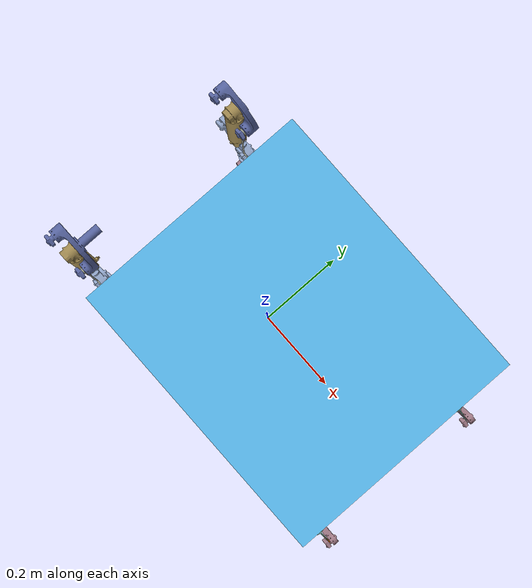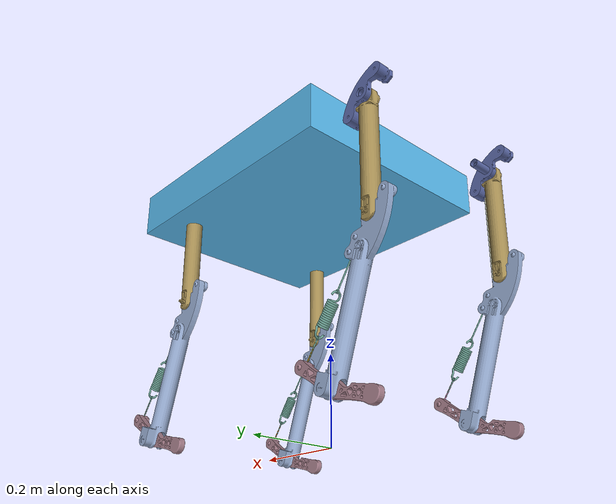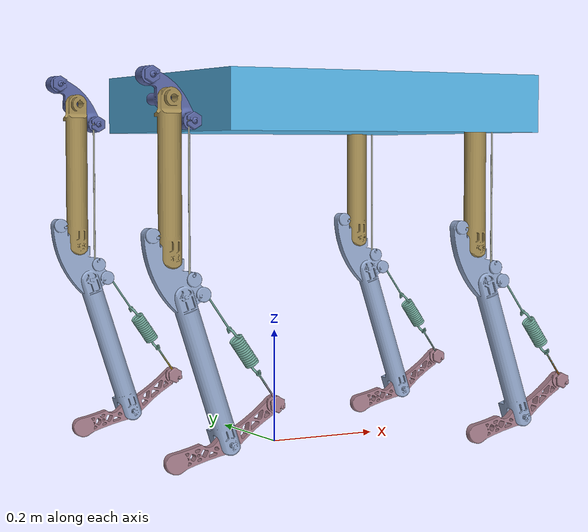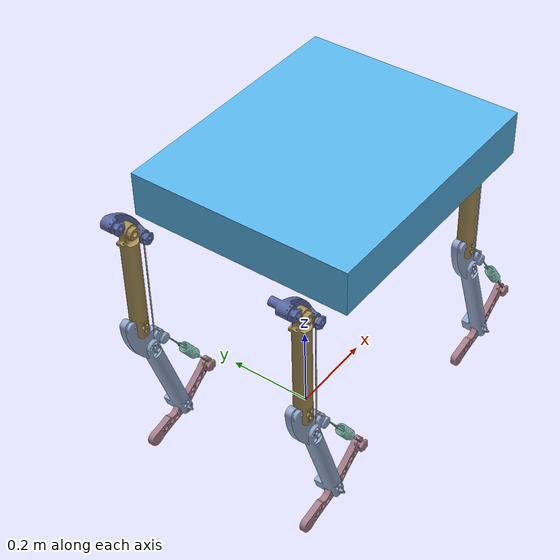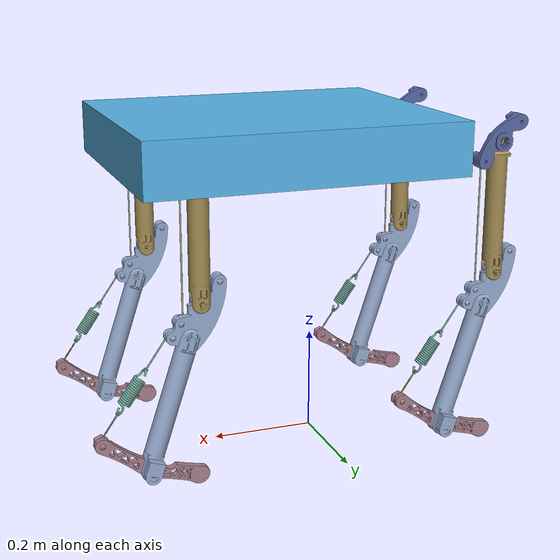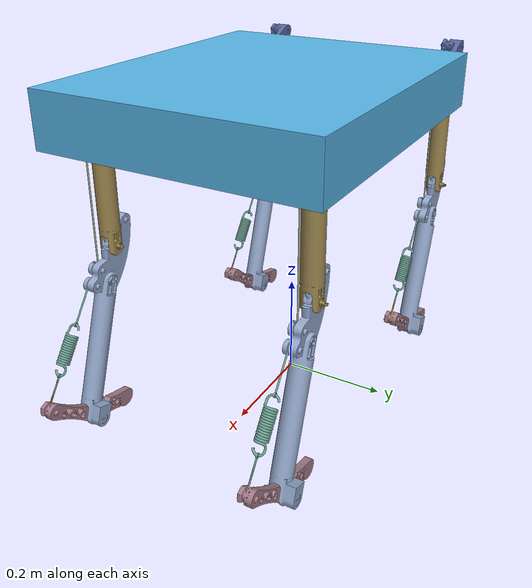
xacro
<?xml version="1.0" ?>
<!-- |    This document was autogenerated by xacro from laelaps_robot.urdf.xacro        | -->
<!-- |    EDITING THIS FILE BY HAND IS NOT RECOMMENDED                                 | -->
<!--
This file includes the main robot description of the new developed by CSL at NTUA Athens
-->
<robot name="laelaps_robot"
    xmlns:xacro="http://www.ros.org/wiki/xacro">
    <xacro:include filename="$(find laelaps_description)/urdf/laelaps_robot.urdf.xacro" />
    <xacro:laelaps_robot/>
</robot>

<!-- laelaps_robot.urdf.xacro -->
<!--
This file includes the main robot description of the new developed laelaps robot by CSL NTUA Athens
-->
<robot name="laelaps"
    xmlns:xacro="http://www.ros.org/wiki/xacro">
    <!-- Constants for robot dimensions -->
    <xacro:property name="initial_height" value="0.5" />
    <xacro:property name="body_stl" value="package://laelaps_description/meshes/body.STL"/>
    <xacro:property name="body_dae" value="package://laelaps_description/meshes/body_grey_m.dae"/>
    <!-- base dimensions -->
    <xacro:property name="base_mass" value="40"/>
    <xacro:property name="base_length" value="0.6"/>
    <xacro:property name="base_width" value="0.4"/>
    <xacro:property name="base_depth" value="0.1"/>
    <xacro:property name="hip_to_hip" value="${base_length}"/>
    <xacro:property name="com_pos" value="-0.01"/>
    <xacro:property name="com_pos_visual" value="-0.01"/>
    <xacro:property name="base_IXX" value="0.87"/>
    <xacro:property name="base_IXY" value="0.0"/>
    <xacro:property name="base_IXZ" value="0.0"/>
    <xacro:property name="base_IYY" value="1.23"/>
    <xacro:property name="base_IYZ" value="0.0"/>
    <xacro:property name="base_IZZ" value="2.03"/>
    <xacro:property name="distance_from_ground" value="0.6" />
    <xacro:include filename="$(find laelaps_description)/urdf/leg.urdf.xacro" />
    <xacro:macro name="laelaps_robot">

        <link name="initial_link"/>
        <joint name="floating_base" type="fixed">
            <parent link="initial_link"/>
            <child link="body"/>
        </joint>

        <!-- base -->
        <link name="body">
            <collision>
                <origin xyz="${com_pos} 0 ${distance_from_ground}" rpy="0 0 0"/>
                <geometry>
                    <mesh filename="${body_stl}"/>
                </geometry>
            </collision>
            <visual>
                <origin xyz="${com_pos_visual} 0 ${distance_from_ground}" rpy="1.57 0 0"/>
                <geometry>
                    <mesh filename="${body_dae}"/>
                </geometry>
            </visual>
            <inertial>
                <origin xyz="${com_pos} 0 ${distance_from_ground}" rpy="0 0 0"/>
                <mass value="${base_mass}"/>
                <inertia ixx="${base_IXX}" ixy="${base_IXY}" ixz="${base_IXZ}" iyy="${base_IYY}" iyz="${base_IYZ}" izz="${base_IZZ}" />
            </inertial>
        </link>

        <!-- include all four legs -->
        <!-- Right Side -->
        <xacro:leg distance_from_ground="${distance_from_ground}" prefix1="R" prefix2="F"/>
        <xacro:leg distance_from_ground="${distance_from_ground}" prefix1="R" prefix2="H"/>
        <!-- Left Side -->
        <xacro:leg distance_from_ground="${distance_from_ground}" prefix1="L" prefix2="F"/>
        <xacro:leg distance_from_ground="${distance_from_ground}" prefix1="L" prefix2="H"/>

    </xacro:macro>

    <gazebo>
        <plugin name="gazebo_ros_control" filename="libgazebo_ros_control.so">
            <robotNamespace>/laelaps_robot</robotNamespace>
        </plugin>
    </gazebo>

</robot>

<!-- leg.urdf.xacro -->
<!-- This xacro file describes the robotic legs of the laelaps_robot -->
<robot name="laelaps_robot"
    xmlns:xacro="http://www.ros.org/wiki/xacro">
    <xacro:property name="femur_length" value="0.25"/>
    <xacro:property name="tibia_length" value="0.3"/>
    <xacro:property name="arm_mass" value="0.16"/>
    <!-- Joint A -->
    <xacro:property name= "joint_A_lower_limit" value="-1.25"/>
    <xacro:property name= "joint_A_upper_limit" value="1.25"/>
    <!-- Joint B -->
    <xacro:property name= "joint_B_lower_limit" value="-1.25"/>
    <xacro:property name= "joint_B_upper_limit" value="1.25"/>
    <!-- Joint C -->
    <xacro:property name="joint_C_lower_limit" value="0.0"/>
    <xacro:property name="joint_C_upper_limit" value="1.57"/>
    <!-- Joint D -->
    <xacro:property name= "joint_D_lower_limit" value="-1.25"/>
    <xacro:property name= "joint_D_upper_limit" value="1.25"/>
    <!-- Joint G -->
    <xacro:property name="joint_G_lower_limit" value="-0.05"/>
    <xacro:property name="joint_G_upper_limit" value="0"/>
    <!-- xacro macro for building each leg -->
    <!-- Leg position -->
    <xacro:property name="leg_X" value="0"/>
    <xacro:property name="leg_Y1" value="0"/>
    <xacro:property name="leg_Y2" value="0"/>
    <xacro:property name="leg_Z" value="0"/>
    <!-- Files -->
    <xacro:property name="arm_stl" value="package://laelaps_description/meshes/transmission_arm.STL"/>
    <xacro:property name="arm_dae_left" value="package://laelaps_description/meshes/transmission_arm.dae"/>
    <xacro:property name="arm_dae_right" value="package://laelaps_description/meshes/transmission_arm_right.dae"/>
    <xacro:property name="femur_stl" value="package://laelaps_description/meshes/femur.STL"/>
    <xacro:property name="femur_dae" value="package://laelaps_description/meshes/femur.dae"/>
    <xacro:property name="tibia_stl" value="package://laelaps_description/meshes/tibia.STL"/>
    <xacro:property name="tibia_dae" value="package://laelaps_description/meshes/tibia.dae"/>
    <xacro:property name="foot_stl" value="package://laelaps_description/meshes/foot.STL"/>
    <xacro:property name="foot_dae" value="package://laelaps_description/meshes/foot.dae"/>
    <xacro:property name="cable_stl" value="package://laelaps_description/meshes/cable.STL"/>
    <xacro:property name="cable_dae" value="package://laelaps_description/meshes/cable.dae"/>
    <xacro:property name="spring_part_a_stl" value="package://laelaps_description/meshes/spring_part_a.STL"/>
    <xacro:property name="spring_part_a_dae" value="package://laelaps_description/meshes/spring_part_a.dae"/>
    <xacro:property name="spring_part_b_stl" value="package://laelaps_description/meshes/spring_part_b.STL"/>
    <xacro:property name="spring_part_b_dae" value="package://laelaps_description/meshes/spring_part_b.dae"/>
    <!-- xacro macro for building each leg -->
    <!-- Leg properties Start -->
    <xacro:property name="arm_mass" value="0.243583"/>
    <xacro:property name="arm_IXX" value="0.000238"/>
    <xacro:property name="arm_IXY" value="-0.000143"/>
    <xacro:property name="arm_IXZ" value="0"/>
    <xacro:property name="arm_IYY" value="0.000238"/>
    <xacro:property name="arm_IYZ" value="0"/>
    <xacro:property name="arm_IZZ" value="0.000326"/>
    <xacro:property name="arm_inertia_origin" value="0.001841 0.001845 0.000604"/>
    <xacro:property name="arm_inertia_rotation" value="0.0 0.0 0"/>
    <xacro:property name="femur_mass" value="0.321675"/>
    <xacro:property name="femur_IXX" value="0.0030216"/>
    <xacro:property name="femur_IXY" value="0.0"/>
    <xacro:property name="femur_IXZ" value="0.0"/>
    <xacro:property name="femur_IYY" value="0.0000606"/>
    <xacro:property name="femur_IYZ" value="0.0000508"/>
    <xacro:property name="femur_IZZ" value="0.0030174"/>
    <xacro:property name="femur_inertia_origin" value="0 -0.1089928 0.0013804"/>
    <xacro:property name="tibia_mass" value="0.583068"/>
    <xacro:property name="tibia_IXX" value="0.0069971"/>
    <xacro:property name="tibia_IXY" value="-0.0025079"/>
    <xacro:property name="tibia_IXZ" value="-0.0000413"/>
    <xacro:property name="tibia_IYY" value="0.0011300"/>
    <xacro:property name="tibia_IYZ" value="0.0001357"/>
    <xacro:property name="tibia_IZZ" value="0.0080248"/>
    <xacro:property name="tibia_inertia_origin" value="0.0343235 -0.1131727 -0.0003377"/>
    <xacro:property name="tibia_inertia_rotation" value="0.0 0.0 0"/>
    <xacro:property name="foot_mass" value="0.185259"/>
    <xacro:property name="foot_IXX" value="0.000039"/>
    <xacro:property name="foot_IXY" value="0.000114"/>
    <xacro:property name="foot_IXZ" value="0.000014"/>
    <xacro:property name="foot_IYY" value="0.000946"/>
    <xacro:property name="foot_IYZ" value="0.000003"/>
    <xacro:property name="foot_IZZ" value="0.000974"/>
    <xacro:property name="foot_inertia_origin" value="0 0 0"/>
    <xacro:property name="footStiffness" value="300000.0"/>
    <xacro:property name="footDamping" value="1000.0"/>
    <xacro:property name="footSpinningFriction" value="1.0"/>
    <xacro:property name="footLateralFriction" value="1.2"/>
    <xacro:property name="cable_mass" value="0.1"/>
    <xacro:property name="cable_IXX" value="0.00008"/>
    <xacro:property name="cable_IXY" value="0"/>
    <xacro:property name="cable_IXZ" value="0"/>
    <xacro:property name="cable_IYY" value="0.000002"/>
    <xacro:property name="cable_IYZ" value="0.0000"/>
    <xacro:property name="cable_IZZ" value="0.00008"/>
    <xacro:property name="cable_inertia_origin" value="0 -0.125 0"/>
    <xacro:property name="springA_mass" value="0.05"/>
    <xacro:property name="springA_IXX" value="0.000012"/>
    <xacro:property name="springA_IXY" value="0"/>
    <xacro:property name="springA_IXZ" value="0"/>
    <xacro:property name="springA_IYY" value="0.0000606"/>
    <xacro:property name="springA_IYZ" value="0.0000508"/>
    <xacro:property name="springA_IZZ" value="0.0030174"/>
    <xacro:property name="springA_inertia_origin" value="0 0 0"/>
    <xacro:property name="springB_mass" value="0.05"/>
    <xacro:property name="springB_IXX" value="0.000012"/>
    <xacro:property name="springB_IXY" value="0"/>
    <xacro:property name="springB_IXZ" value="0"/>
    <xacro:property name="springB_IYY" value="0.000001"/>
    <xacro:property name="springB_IYZ" value="0"/>
    <xacro:property name="springB_IZZ" value="0.000012"/>
    <xacro:property name="springB_inertia_origin" value="0 0 0"/>
    <xacro:property name="Kspring" value="26480"/>
    <xacro:property name="Bspring" value="0.1"/>
    <xacro:property name="hip_to_hip" value="0.6"/>
    <xacro:property name="leg_X_pos" value="0.28"/>
    <xacro:property name="leg_X_pos_minus" value="-0.3"/>
    <xacro:property name="leg_Y1_pos" value="0.2"/>
    <xacro:property name="leg_Y1_pos_minus" value="-0.2"/>
    <xacro:property name="leg_Y2_pos_minus" value="-0.216"/>
    <xacro:property name="leg_Y2_pos_plus" value="0.184"/>
    <xacro:property name="leg_Z_pos" value="0.0"/>
    <xacro:property name="hip_effort" value="50"/>
    <xacro:property name="knee_effort" value="50"/>
    <xacro:property name="hip_velocity" value="6"/>
    <xacro:property name="knee_velocity" value="8"/>
    <!-- Leg properties End -->
    <xacro:macro name="leg" params="distance_from_ground prefix1 prefix2">
        <!-- Set up the the lever position angle and the actuator position for each leg individually -->
        <xacro:if value="${prefix1 == 'L' and prefix2 == 'H'}">
            <xacro:property name="leg_X" value="${leg_X_pos}"/>
            <xacro:property name="leg_Y1" value="${leg_Y1_pos_minus}"/>
            <xacro:property name="leg_Y2" value="${leg_Y2_pos_minus}"/>
            <xacro:property name="leg_Z" value="${leg_Z_pos}"/>
            <xacro:property name="arm_dae" value="${arm_dae_left}"/>
        </xacro:if>
        <xacro:if value="${prefix1 == 'R' and prefix2 == 'H'}">
            <xacro:property name="leg_X" value="${leg_X_pos}"/>
            <xacro:property name="leg_Y1" value="${leg_Y1_pos}"/>
            <xacro:property name="leg_Y2" value="${leg_Y2_pos_plus}"/>
            <xacro:property name="leg_Z" value="${leg_Z_pos}"/>
            <xacro:property name="arm_dae" value="${arm_dae_right}"/>
        </xacro:if>
        <xacro:if value="${prefix1 == 'L' and prefix2 == 'F'}">
            <xacro:property name="leg_X" value="${leg_X_pos_minus}"/>
            <xacro:property name="leg_Y1" value="${leg_Y1_pos_minus}"/>
            <xacro:property name="leg_Y2" value="${leg_Y2_pos_minus}"/>
            <xacro:property name="leg_Z" value="${leg_Z_pos}"/>
            <xacro:property name="arm_dae" value="${arm_dae_left}"/>
        </xacro:if>
        <xacro:if value="${prefix1 == 'R' and prefix2 == 'F'}">
            <xacro:property name="leg_X" value="${leg_X_pos_minus}"/>
            <xacro:property name="leg_Y1" value="${leg_Y1_pos}"/>
            <xacro:property name="leg_Y2" value="${leg_Y2_pos_plus}"/>
            <xacro:property name="leg_Z" value="${leg_Z_pos}"/>
            <xacro:property name="arm_dae" value="${arm_dae_right}"/>
        </xacro:if>
        <!-- arm -->
        <!-- arm -->
        <!-- arm -->
        <link name="${prefix1}${prefix2}_arm">
            <collision>
                <origin xyz="0 0 0" rpy="0 0 0"/>
                <geometry>
                    <mesh filename="${arm_stl}"/>
                </geometry>
            </collision>
            <visual>
                <origin xyz="0 0 0" rpy="0 0 0"/>
                <geometry>
                    <mesh filename="${arm_dae}"/>
                </geometry>
            </visual>
            <inertial>
                <origin xyz="${arm_inertia_origin}" rpy="${arm_inertia_rotation}"/>
                <mass value="${arm_mass}"/>
                <inertia ixx="${arm_IXX}" ixy="${arm_IXY}" ixz="${arm_IXZ}" iyy="${arm_IYY}" iyz="${arm_IXZ}" izz="${arm_IZZ}"/>
            </inertial>
        </link>
        <!-- upper leg -->
        <!-- upper leg -->
        <!-- upper leg -->
        <link name="${prefix1}${prefix2}_femur">
            <collision>
                <origin xyz="0 0 0" rpy="0 0 0"/>
                <geometry>
                    <mesh filename="${femur_stl}"/>
                </geometry>
            </collision>
            <visual>
                <origin xyz="0 0 0" rpy="0 0 0"/>
                <geometry>
                    <mesh filename="${femur_dae}"/>
                </geometry>
            </visual>
            <inertial>
                <origin xyz="${femur_inertia_origin}" rpy="0 0 0"/>
                <mass value="${femur_mass}"/>
                <inertia ixx="${femur_IXX}" ixy="${femur_IXY}" ixz="${femur_IXZ}" iyy="${femur_IYY}" iyz="${femur_IYZ}" izz="${femur_IZZ}"/>
            </inertial>
        </link>
        <!-- lower leg -->
        <!-- lower leg -->
        <!-- lower leg -->
        <link name="${prefix1}${prefix2}_tibia">
            <collision>
                <origin xyz="0 0 0" rpy="0 0 0"/>
                <geometry>
                    <mesh filename="${tibia_stl}"/>
                </geometry>
            </collision>
            <visual>
                <origin xyz="0 0 0" rpy="0 0 0"/>
                <geometry>
                    <mesh filename="${tibia_dae}"/>
                </geometry>
            </visual>
            <inertial>
                <origin xyz="${tibia_inertia_origin}" rpy="${tibia_inertia_rotation}"/>
                <mass value="${tibia_mass}"/>
                <inertia ixx="${tibia_IXX}" ixy="${tibia_IXY}" ixz="${tibia_IXZ}" iyy="${tibia_IYY}" iyz="${tibia_IYZ}" izz="${tibia_IZZ}"/>
            </inertial>
        </link>
        <!-- foot -->
        <!-- foot -->
        <!-- foot -->
        <link name="${prefix1}${prefix2}_foot">
            <collision>
                <origin xyz="0 0 0" rpy="0 0 0"/>
                <geometry>
                    <mesh filename="${foot_stl}"/>
                </geometry>
            </collision>
            <visual>
                <origin xyz="0 0 0" rpy="0 0 0"/>
                <geometry>
                    <mesh filename="${foot_dae}"/>
                </geometry>
            </visual>
            <inertial>
                <origin xyz="${foot_inertia_origin}" rpy="0 0 0"/>
                <mass value="${foot_mass}"/>
                <inertia ixx="${foot_IXX}" ixy="${foot_IXY}" ixz="${foot_IXZ}" iyy="${foot_IYY}" iyz="${foot_IYZ}" izz="${foot_IZZ}"/>
            </inertial>
        </link>
        <!-- foot -->
        <!-- foot -->
        <!-- foot -->
        <gazebo reference="${prefix1}${prefix2}_foot">
            <collision>
                <surface>
                    <bounce>
                        <restitution_coefficient>0</restitution_coefficient>
                        <threshold>1e+06</threshold>
                    </bounce>
                    <friction>
                        <torsional>
                            <coefficient>${footSpinningFriction}</coefficient>
                        </torsional>
                        <ode>
                            <mu>${footLateralFriction}</mu>
                            <mu2>${footLateralFriction}</mu2>
                        </ode>
                        <bullet>
                            <rolling_friction>${footSpinningFriction}</rolling_friction>
                            <friction2>${footLateralFriction}</friction2>
                        </bullet>
                    </friction>
                    <contact>
                        <ode>
                            <kp>${footStiffness}</kp>
                            <kd>${footDamping}</kd>
                        </ode>
                        <bullet>
                            <kp>${footStiffness}</kp>
                            <kd>${footDamping}</kd>
                        </bullet>
                    </contact>
                </surface>
            </collision>
        </gazebo>
        <!-- cable -->
        <!-- cable -->
        <!-- cable -->
        <link name="${prefix1}${prefix2}_cable">
            <collision>
                <origin xyz="0 0 0" rpy="0 0 0"/>
                <geometry>
                    <mesh filename="${cable_stl}"/>
                </geometry>
            </collision>
            <visual>
                <origin xyz="0 0 0" rpy="0 0 0"/>
                <geometry>
                    <mesh filename="${cable_dae}"/>
                </geometry>
            </visual>
            <inertial>
                <origin xyz="${cable_inertia_origin}" rpy="0 0 0"/>
                <mass value="${cable_mass}"/>
                <inertia ixx="${cable_IXX}" ixy="${cable_IXY}" ixz="${cable_IXZ}" iyy="${cable_IYY}" iyz="${cable_IYZ}" izz="${cable_IZZ}"/>
            </inertial>
        </link>
        <!-- spring_part_a -->
        <!-- spring_part_a -->
        <!-- spring_part_a -->
        <link name="${prefix1}${prefix2}_spring_part_a">
            <collision>
                <origin xyz="0 0 0" rpy="0 0 0"/>
                <geometry>
                    <mesh filename="${spring_part_a_stl}"/>
                </geometry>
            </collision>
            <visual>
                <origin xyz="0 0 0" rpy="0 0 0"/>
                <geometry>
                    <mesh filename="${spring_part_a_dae}"/>
                </geometry>
            </visual>
            <inertial>
                <origin xyz="${springA_inertia_origin}" rpy="0 0 0"/>
                <mass value="${springA_mass}"/>
                <inertia ixx="${springA_IXX}" ixy="${springA_IXY}" ixz="${springA_IXZ}" iyy="${springA_IYY}" iyz="${springA_IYZ}" izz="${springA_IZZ}"/>
            </inertial>
        </link>
        <!-- spring_part_b -->
        <!-- spring_part_b -->
        <!-- spring_part_b -->
        <link name="${prefix1}${prefix2}_spring_part_b">
            <collision>
                <origin xyz="0 -0.03 0" rpy="0 0 0"/>
                <geometry>
                    <mesh filename="${spring_part_b_stl}"/>
                </geometry>
            </collision>
            <visual>
                <origin xyz="0 -0.03 0" rpy="0 0 0"/>
                <geometry>
                    <mesh filename="${spring_part_b_stl}"/>
                </geometry>
            </visual>
            <inertial>
                <origin xyz="${springB_inertia_origin}" rpy="0 0 0"/>
                <mass value="${springB_mass}"/>
                <inertia ixx="${springB_IXX}" ixy="${springB_IXY}" ixz="${springB_IXZ}" iyy="${springB_IYY}" iyz="${springB_IYZ}" izz="${springB_IZZ}"/>
            </inertial>
        </link>
        <!-- joint A -->
        <!-- joint A -->
        <!-- joint A -->
        <joint name="${prefix1}${prefix2}_joint_knee" type="revolute">
            <origin xyz="${leg_X} ${leg_Y1} ${distance_from_ground}" rpy="1.57 0 0"/>
            <parent link="body"/>
            <child link="${prefix1}${prefix2}_arm"/>
            <axis xyz="0 0 1"/>
            <dynamics damping="0.0"/>
            <limit effort="${knee_effort}" velocity="${knee_velocity}" lower="${joint_A_lower_limit}" upper="${joint_A_upper_limit}"/>
        </joint>
        <!-- joint B -->
        <!-- joint B -->
        <!-- joint B -->
        <joint name="${prefix1}${prefix2}_joint_hip" type="revolute">
            <origin xyz="${leg_X} ${leg_Y2} ${distance_from_ground}" rpy="1.57 0 0"/>
            <parent link="body"/>
            <child link="${prefix1}${prefix2}_femur"/>
            <axis xyz="0 0 1"/>
            <dynamics damping="0.0"/>
            <limit effort="${hip_effort}" velocity="${hip_velocity}" lower="${joint_B_lower_limit}" upper="${joint_B_upper_limit}"/>
        </joint>
        <!-- joint C -->
        <!-- joint C -->
        <!-- joint C -->
        <joint name="${prefix1}${prefix2}_joint_C" type="revolute">
            <origin xyz="0 -${femur_length} 0" rpy="0 0 0"/>
            <parent link="${prefix1}${prefix2}_femur"/>
            <child link="${prefix1}${prefix2}_tibia"/>
            <axis xyz="0 0 1"/>
            <dynamics damping="0.0"/>
            <limit effort="100" velocity="100" lower="${joint_C_lower_limit}" upper="${joint_C_upper_limit}"/>
        </joint>
        <!-- joint D -->
        <!-- joint D -->
        <!-- joint D -->
        <joint name="${prefix1}${prefix2}_joint_D" type="revolute">
            <origin xyz="0.09958 -${tibia_length} 0" rpy="0 0 0.317475"/>
            <parent link="${prefix1}${prefix2}_tibia"/>
            <child link="${prefix1}${prefix2}_foot"/>
            <axis xyz="0 0 1"/>
            <dynamics damping="0.0"/>
            <limit effort="100" velocity="100" lower="${joint_D_lower_limit}" upper="${joint_D_upper_limit}"/>
        </joint>
        <!-- joint E -->
        <!-- joint E -->
        <!-- joint E -->
        <joint name="${prefix1}${prefix2}_joint_E" type="continuous">
            <origin xyz="0.03536 -0.03536 0.0246" rpy="0 0 0"/>
            <parent link="${prefix1}${prefix2}_arm"/>
            <child link="${prefix1}${prefix2}_cable"/>
            <axis xyz="0 0 1"/>
            <dynamics damping="0.0"/>
            <limit effort="100" velocity="100"/>
        </joint>
        <!-- joint F -->
        <!-- joint F -->
        <!-- joint F -->
        <joint name="${prefix1}${prefix2}_joint_F" type="continuous">
            <origin xyz="0.0514 -0.06 0.0089" rpy="0 0 0.608596"/>
            <parent link="${prefix1}${prefix2}_tibia"/>
            <child link="${prefix1}${prefix2}_spring_part_a"/>
            <axis xyz="0 0 1"/>
            <dynamics damping="0.0"/>
            <limit effort="100" velocity="100"/>
        </joint>
        <!-- joint G -->
        <!-- joint G -->
        <!-- joint G -->
        <joint name="${prefix1}${prefix2}_joint_G" type="prismatic">
            <origin xyz="-0 -0.2 0" rpy="0 0 0"/>
            <parent link="${prefix1}${prefix2}_spring_part_a"/>
            <child link="${prefix1}${prefix2}_spring_part_b"/>
            <axis xyz="0 1 0"></axis>
            <dynamics damping="0.0"/>
            <limit effort="0" velocity="0" lower="${joint_G_lower_limit}" upper="${joint_G_upper_limit}"/>
        </joint>
        <!-- joint G SDF -->
        <!-- joint G SDF -->
        <!-- joint G SDF -->
        <gazebo>
            <joint name='${prefix1}${prefix2}_joint_G_SDF' type='prismatic'>
                <parent>${prefix1}${prefix2}_spring_part_a</parent>
                <child>${prefix1}${prefix2}_spring_part_b</child>
                <pose frame=''>0 0 0 0 -0 0</pose>
                <axis>
                    <xyz>-0.571716 0.000653 0.820451</xyz>
                    <use_parent_model_frame>1</use_parent_model_frame>
                    <limit>
                        <lower>-0.05</lower>
                        <upper>0</upper>
                        <effort>0</effort>
                        <velocity>0</velocity>
                    </limit>
                    <dynamics>
                        <spring_reference>0</spring_reference>
                        <spring_stiffness>${Kspring}</spring_stiffness>
                        <damping>${Bspring}</damping>
                        <friction>0</friction>
                    </dynamics>
                </axis>
            </joint>
        </gazebo>
        <!-- Gazebo Joint GA1  -->
        <!-- Gazebo Joint GA1  -->
        <!-- Gazebo Joint GA1  -->
        <gazebo>
            <joint type="revolute" name="${prefix1}${prefix2}_joint_GA1">
                <pose>0 -0.25 0 0 0 0</pose>
                <child>${prefix1}${prefix2}_cable</child>
                <parent>${prefix1}${prefix2}_tibia</parent>
                <axis>
                    <xyz>0 -1 0</xyz>
                </axis>
                <physics>
                    <ode>
                        <erp>0.5</erp>
                    </ode>
                </physics>
            </joint>
        </gazebo>
        <!-- Gazebo Joint GA2  -->
        <!-- Gazebo Joint GA2  -->
        <!-- Gazebo Joint GA2  -->
        <gazebo>
            <joint type="revolute" name="${prefix1}${prefix2}_joint_GA2">
                <pose>0 -0.025 0 0 0 0</pose>
                <child>${prefix1}${prefix2}_spring_part_b</child>
                <parent>${prefix1}${prefix2}_foot</parent>
                <axis>
                    <xyz>0 -1 0</xyz>
                </axis>
            </joint>
        </gazebo>
        <!-- Gazebo sensor A -->
        <!-- Gazebo sensor A -->
        <!-- Gazebo sensor A -->
        <gazebo reference="${prefix1}${prefix2}_joint_knee">
            <sensor name="${prefix1}${prefix2}_force_torque" type="force_torque">
                <always_on>true</always_on>
                <update_rate>1000</update_rate>
            </sensor>
        </gazebo>
        <!-- Gazebo sensor B -->
        <!-- Gazebo sensor B -->
        <!-- Gazebo sensor B -->
        <gazebo reference="${prefix1}${prefix2}_joint_hip">
            <sensor name="${prefix1}${prefix2}_force_torque" type="force_torque">
                <always_on>true</always_on>
                <update_rate>1000</update_rate>
            </sensor>
        </gazebo>
        <!-- Gazebo foot  -->
        <!-- Gazebo foot  -->
        <!-- Gazebo foot  -->
        <!-- Gazebo Joint TRAN1  -->
        <!-- Gazebo Joint TRAN1  -->
        <!-- Gazebo Joint TRAN1  -->
        <transmission name="${prefix1}${prefix2}_tran1">
            <type>transmission_interface/SimpleTransmission</type>
            <joint name="${prefix1}${prefix2}_joint_knee">
                <hardwareInterface>hardware_interface/EffortJointInterface</hardwareInterface>
            </joint>
            <actuator name="${prefix1}${prefix2}_motor1">
                <hardwareInterface>hardware_interface/EffortJointInterface</hardwareInterface>
                <mechanicalReduction>1</mechanicalReduction>
            </actuator>
        </transmission>
        <!-- Gazebo Joint TRAN2  -->
        <!-- Gazebo Joint TRAN2  -->
        <!-- Gazebo Joint TRAN2  -->
        <transmission name="${prefix1}${prefix2}_tran2">
            <type>transmission_interface/SimpleTransmission</type>
            <joint name="${prefix1}${prefix2}_joint_hip">
                <hardwareInterface>hardware_interface/EffortJointInterface</hardwareInterface>
            </joint>
            <actuator name="${prefix1}${prefix2}_motor2">
                <hardwareInterface>hardware_interface/EffortJointInterface</hardwareInterface>
                <mechanicalReduction>1</mechanicalReduction>
            </actuator>
        </transmission>
    </xacro:macro>
</robot>
